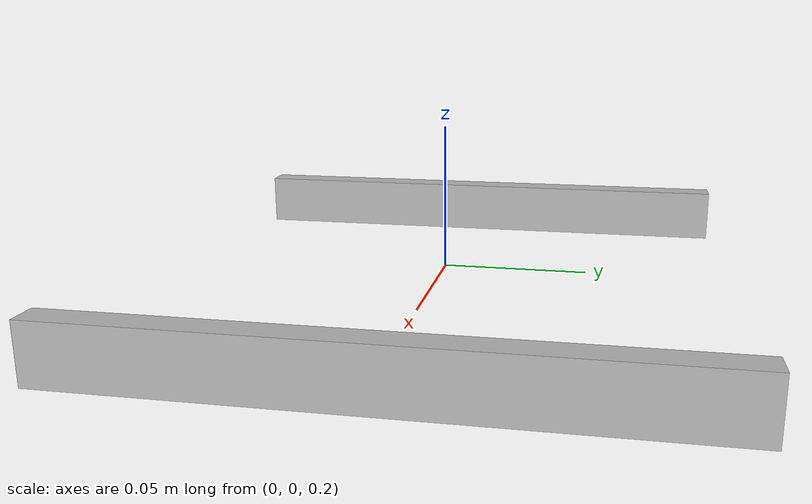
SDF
<?xml version="1.0" ?>
<sdf version="1.5">
  <model name="shelf">
    <static>true</static>
    <link name="link">
      <static>1</static>
      <pose>-0.1 0 0.2 0 0 0</pose>
      <collision name="collision">
        <geometry>
          <box>
            <size>0.01 0.2 0.02</size>
          </box>
        </geometry>
      </collision>
      <visual name="visual">
        <geometry>
          <box>
            <size>0.01 0.2 0.02</size>
          </box>
        </geometry>
      </visual>
    </link>

    <link name="link1">
      <static>1</static>
      <pose>0.1 0 0.2 0 0 0</pose>
      <collision name="collision">
        <geometry>
          <box>
            <size>0.01 0.2 0.02</size>
          </box>
        </geometry>
      </collision>
      <visual name="visual">
        <geometry>
          <box>
            <size>0.01 0.2 0.02</size>
          </box>
        </geometry>
      </visual>
    </link>
  </model>
</sdf>
